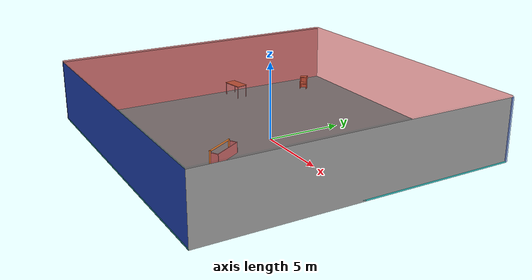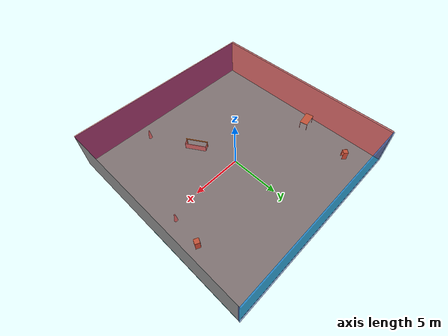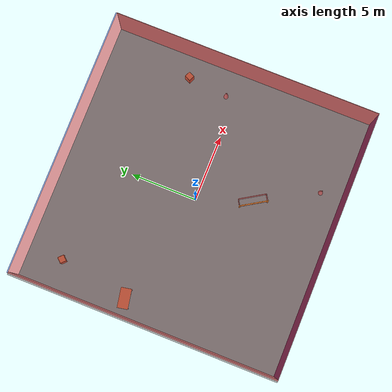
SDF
<sdf version="1.4">
 <world name="default">
  <physics type="ode">
   <max_step_size>0.001</max_step_size>
   <real_time_factor>1</real_time_factor>
   <real_time_update_rate>1000</real_time_update_rate>
   <gravity>0 0 -9.8</gravity>
  </physics>
  <scene><ambient>0.4 0.4 0.4 1</ambient><background>0.7 0.7 0.7 1</background><shadows>1</shadows></scene>
  <model name="Surrounding">
   <static>1</static>
   <link name="Ceiling">
    <collision name="Ceiling_Collision"><geometry><box><size>20 20 0.1</size></box></geometry></collision>
    <visual name="Ceiling_Visual">
     <geometry><box><size>20 20 0.1</size></box></geometry>
     <material>
      <script><uri>file://media/materials/scripts/gazebo.material</uri><name>Gazebo/RedTransparent</name></script>
     </material>
    </visual>
    <pose>0 0 4.05 0 0 0</pose>
   </link>
   <link name="Wall_South">
    <collision name="Wall_South_Collision">
     <geometry><box><size>20 0 4</size></box></geometry>
     <pose>0 0 2 0 -0 0</pose>
    </collision>
    <visual name="Wall_South_Visual">
     <pose>0 0 2 0 -0 0</pose>
     <geometry><box><size>20 0 4</size></box></geometry>
     <material>
      <script><uri>file://media/materials/scripts/gazebo.material</uri><name>Gazebo/BlueLaser</name></script>
     </material>
    </visual>
    <velocity_decay><linear>0</linear><angular>0</angular></velocity_decay>
    <pose>0 -10 0 0 -0 0</pose>
   </link>
   <link name="Wall_East">
    <collision name="Wall_21_Collision">
     <geometry><box><size>20 0 4</size></box></geometry>
     <pose>0 0 2 0 -0 0</pose>
    </collision>
    <visual name="Wall_21_Visual">
     <pose>0 0 2 0 -0 0</pose>
     <geometry><box><size>20 0 4</size></box></geometry>
     <material>
      <script><uri>file://media/materials/scripts/gazebo.material</uri><name>Gazebo/Grey</name></script>
     </material>
    </visual>
    <velocity_decay><linear>0</linear><angular>0</angular></velocity_decay>
    <pose>10 0 0 0 -0 1.5708</pose>
   </link>
   <link name="Wall_North">
    <collision name="Wall_22_Collision">
     <geometry><box><size>20 0.2 4</size></box></geometry>
     <pose>0 0 2 0 -0 0</pose>
    </collision>
    <visual name="Wall_22_Visual">
     <pose>0 0 2 0 -0 0</pose>
     <geometry><box><size>20 0.2 4</size></box></geometry>
     <material>
      <script><uri>file://media/materials/scripts/gazebo.material</uri><name>Gazebo/BlueTransparent</name></script>
     </material>
    </visual>
    <velocity_decay><linear>0</linear><angular>0</angular></velocity_decay>
    <pose>0 10 0 0 -0 0</pose>
   </link>
   <link name="Wall_West">
    <collision name="Wall_23_Collision">
     <geometry><box><size>20 0.2 4</size></box></geometry>
     <pose>0 0 2 0 -0 0</pose>
    </collision>
    <visual name="Wall_23_Visual">
     <pose>0 0 2 0 -0 0</pose>
     <geometry><box><size>20 0.2 4</size></box></geometry>
     <material>
      <script><uri>file://media/materials/scripts/gazebo.material</uri><name>Gazebo/JointAnchor</name></script>
     </material>
    </visual>
    <velocity_decay><linear>0</linear><angular>0</angular></velocity_decay>
    <pose>-10 0 0 0 0 -1.5708</pose>
   </link>
   <link name="Ground_link">
    <collision name="collision">
     <pose>0 0 .05 0 -0 0</pose>
     <geometry><box><size>20 20 0.1</size></box></geometry>
    </collision>
    <visual name="visual">
     <pose>0 0 .05 0 -0 0</pose>
     <geometry><box><size>20 20 0.1</size></box></geometry>
     <material>
      <script><uri>file://media/materials/scripts/gazebo.material</uri><name>Gazebo/Turquoise</name></script>
     </material>
    </visual>
   </link>
   <static>1</static>
  </model>
  <spherical_coordinates>
   <surface_model>EARTH_WGS84</surface_model>
   <latitude_deg>0</latitude_deg>
   <longitude_deg>0</longitude_deg>
   <elevation>0</elevation>
   <heading_deg>0</heading_deg>
  </spherical_coordinates>
  <light name="lightball_0" type="diffuse">
   <diffuse>0.8 0.8 0.8 1</diffuse>
   <specular>0.2 0.2 0.2 1</specular>
   <attenuation>
    <range>100</range>
    <constant>0.7</constant>
    <linear>0.01</linear>
    <quadratic>0.001</quadratic>
   </attenuation>
   <direction>-0.5 0.1 -0.9</direction>
   <pose>4.66239265629 -9.98334417498 0.635004096887 0 0 0</pose>
  </light>
  <light name="lightball_1" type="diffuse">
   <diffuse>0.8 0.8 0.8 1</diffuse>
   <specular>0.2 0.2 0.2 1</specular>
   <attenuation>
    <range>100</range>
    <constant>0.7</constant>
    <linear>0.01</linear>
    <quadratic>0.001</quadratic>
   </attenuation>
   <direction>-0.5 0.1 -0.9</direction>
   <pose>-4.04976878541 -3.09374478103 0.657216965992 0 0 0</pose>
  </light>
  <light name="lightball_2" type="diffuse">
   <diffuse>0.8 0.8 0.8 1</diffuse>
   <specular>0.2 0.2 0.2 1</specular>
   <attenuation>
    <range>100</range>
    <constant>0.7</constant>
    <linear>0.01</linear>
    <quadratic>0.001</quadratic>
   </attenuation>
   <direction>-0.5 0.1 -0.9</direction>
   <pose>2.95732837138 9.71915876501 0.948834510118 0 0 0</pose>
  </light>
  <light name="lightball_3" type="diffuse">
   <diffuse>0.8 0.8 0.8 1</diffuse>
   <specular>0.2 0.2 0.2 1</specular>
   <attenuation>
    <range>100</range>
    <constant>0.7</constant>
    <linear>0.01</linear>
    <quadratic>0.001</quadratic>
   </attenuation>
   <direction>-0.5 0.1 -0.9</direction>
   <pose>1.56471977517 -4.18106235982 1.10201361879 0 0 0</pose>
  </light>
  <light name="lightball_4" type="diffuse">
   <diffuse>0.8 0.8 0.8 1</diffuse>
   <specular>0.2 0.2 0.2 1</specular>
   <attenuation>
    <range>100</range>
    <constant>0.7</constant>
    <linear>0.01</linear>
    <quadratic>0.001</quadratic>
   </attenuation>
   <direction>-0.5 0.1 -0.9</direction>
   <pose>-8.22725529029 -2.97030831555 0.733469570033 0 0 0</pose>
  </light>
  <light name="lightball_5" type="diffuse">
   <diffuse>0.8 0.8 0.8 1</diffuse>
   <specular>0.2 0.2 0.2 1</specular>
   <attenuation>
    <range>100</range>
    <constant>0.7</constant>
    <linear>0.01</linear>
    <quadratic>0.001</quadratic>
   </attenuation>
   <direction>-0.5 0.1 -0.9</direction>
   <pose>-1.79246945149 -1.15304437386 3.11569544359 0 0 0</pose>
  </light>
  <include><uri>model://table</uri><pose>-8.65324264332 2.07644467243 0 0 0 0.181743205013</pose></include>
  <include><uri>model://cabinet</uri><pose>-7.70753363031 7.34643100877 0 0 0 2.38115611354</pose></include>
  <include>
   <uri>model://robocup_3Dsim_goal</uri>
   <pose>1.22045624319 -4.11792903637 0 0 0 0.553359669759</pose>
  </include>
  <include>
   <uri>model://construction_cone</uri>
   <pose>3.85887918996 -8.41541342698 0 0 0 1.49547001991</pose>
  </include>
  <include>
   <uri>model://construction_cone</uri>
   <pose>8.05967680997 0.731405471907 0 0 0 2.78324067182</pose>
  </include>
  <include><uri>model://cabinet</uri><pose>8.31592918848 3.75673759811 0 0 0 2.71137891832</pose></include>
 </world>
</sdf>

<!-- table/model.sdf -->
<sdf version="1.5">
  <model name="table">
    <static>true</static>
    <link name="link">
      <collision name="surface">
        <pose>0 0 1.0 0 0 0</pose>
        <geometry>
          <box>
            <size>1.5 0.8 0.03</size>
          </box>
        </geometry>
        <surface>
          <friction>
            <ode>
              <mu>0.6</mu>
              <mu2>0.6</mu2>
            </ode>
          </friction>
        </surface>
      </collision>
      <visual name="visual1">
        <pose>0 0 1.0 0 0 0</pose>
        <geometry>
          <box>
            <size>1.5 0.8 0.03</size>
          </box>
        </geometry>
        <material>
          <script>
            <uri>model://media/materials/scripts/gazebo.material</uri>
            <name>Gazebo/Wood</name>
          </script>
        </material>
      </visual>
      <collision name="front_left_leg">
        <pose>0.68 0.38 0.5 0 0 0</pose>
        <geometry>
          <cylinder>
            <radius>0.02</radius>
            <length>1.0</length>
          </cylinder>
        </geometry>
      </collision>
      <visual name="front_left_leg">
        <pose>0.68 0.38 0.5 0 0 0</pose>
        <geometry>
          <cylinder>
            <radius>0.02</radius>
            <length>1.0</length>
          </cylinder>
        </geometry>
        <material>
          <script>
            <uri>model://media/materials/scripts/gazebo.material</uri>
            <name>Gazebo/Grey</name>
          </script>
        </material>
      </visual>
      <collision name="front_right_leg">
        <pose>0.68 -0.38 0.5 0 0 0</pose>
        <geometry>
          <cylinder>
            <radius>0.02</radius>
            <length>1.0</length>
          </cylinder>
        </geometry>
      </collision>
      <visual name="front_right_leg">
        <pose>0.68 -0.38 0.5 0 0 0</pose>
        <geometry>
          <cylinder>
            <radius>0.02</radius>
            <length>1.0</length>
          </cylinder>
        </geometry>
        <material>
          <script>
            <uri>model://media/materials/scripts/gazebo.material</uri>
            <name>Gazebo/Grey</name>
          </script>
        </material>
      </visual>
      <collision name="back_right_leg">
        <pose>-0.68 -0.38 0.5 0 0 0</pose>
        <geometry>
          <cylinder>
            <radius>0.02</radius>
            <length>1.0</length>
          </cylinder>
        </geometry>
      </collision>
      <visual name="back_right_leg">
        <pose>-0.68 -0.38 0.5 0 0 0</pose>
        <geometry>
          <cylinder>
            <radius>0.02</radius>
            <length>1.0</length>
          </cylinder>
        </geometry>
        <material>
          <script>
            <uri>model://media/materials/scripts/gazebo.material</uri>
            <name>Gazebo/Grey</name>
          </script>
        </material>
      </visual>
      <collision name="back_left_leg">
        <pose>-0.68 0.38 0.5 0 0 0</pose>
        <geometry>
          <cylinder>
            <radius>0.02</radius>
            <length>1.0</length>
          </cylinder>
        </geometry>
      </collision>
      <visual name="back_left_leg">
        <pose>-0.68 0.38 0.5 0 0 0</pose>
        <geometry>
          <cylinder>
            <radius>0.02</radius>
            <length>1.0</length>
          </cylinder>
        </geometry>
        <material>
          <script>
            <uri>model://media/materials/scripts/gazebo.material</uri>
            <name>Gazebo/Grey</name>
          </script>
        </material>
      </visual>
    </link>
  </model>
</sdf>

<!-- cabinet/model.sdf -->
<sdf version="1.5">
  <model name="cabinet">
    <static>true</static>
    <link name="cabinet_bottom_plate">
      <inertial>
        <pose>0 0 -1 0 0 0</pose>
        <inertia>
          <ixx>2.050000</ixx>
          <ixy>0</ixy>
          <ixz>0</ixz>
          <iyy>2.050000</iyy>
          <iyz>0</iyz>
          <izz>2.050000</izz>
        </inertia>
        <mass>25.000000</mass>
      </inertial>
      <collision name="cabinet_bottom_plate_geom">
        <pose>0 0 0.010000 0 0 0</pose>
        <geometry>
          <box>
            <size>0.450000 0.450000 0.020000</size>
          </box>
        </geometry>
      </collision>
      <visual name="cabinet_bottom_plate_geom_visual">
        <pose>0 0 0.010000 0 0 0</pose>
        <geometry>
          <box>
            <size>0.450000 0.450000 0.020000</size>
          </box>
        </geometry>
        <material>
          <script>
            <uri>model://media/materials/scripts/gazebo.material</uri>
            <name>Gazebo/Wood</name>
          </script>
        </material>
      </visual>
      <collision name="cabinet_bottom_plate_geom_cabinet_back_plate">
        <pose>0.235000 0 0.510000 0 0 0</pose>
        <geometry>
          <box>
            <size>0.020000 0.450000 1.020000</size>
          </box>
        </geometry>
      </collision>
      <visual name="cabinet_bottom_plate_geom_cabinet_back_plate_visual">
        <pose>0.235000 0 0.510000 0 0 0</pose>
        <geometry>
          <box>
            <size>0.020000 0.450000 1.020000</size>
          </box>
        </geometry>
        <material>
          <script>
            <uri>model://media/materials/scripts/gazebo.material</uri>
            <name>Gazebo/Wood</name>
          </script>
        </material>
      </visual>
      <collision name="cabinet_bottom_plate_geom_cabinet_left_plate">
        <pose>0 0.235000 0.510000 0 0 0</pose>
        <geometry>
          <box>
            <size>0.450000 0.020000 1.020000</size>
          </box>
        </geometry>
      </collision>
      <visual name="cabinet_bottom_plate_geom_cabinet_left_plate_visual">
        <pose>0 0.235000 0.510000 0 0 0</pose>
        <geometry>
          <box>
            <size>0.450000 0.020000 1.020000</size>
          </box>
        </geometry>
        <material>
          <script>
            <uri>model://media/materials/scripts/gazebo.material</uri>
            <name>Gazebo/Wood</name>
          </script>
        </material>
      </visual>
      <collision name="cabinet_bottom_plate_geom_cabinet_middle_plate">
        <pose>0 0 0.510000 0 0 0</pose>
        <geometry>
          <box>
            <size>0.450000 0.450000 0.020000</size>
          </box>
        </geometry>
      </collision>
      <visual name="cabinet_bottom_plate_geom_cabinet_middle_plate_visual">
        <pose>0 0 0.510000 0 0 0</pose>
        <geometry>
          <box>
            <size>0.450000 0.450000 0.020000</size>
          </box>
        </geometry>
        <material>
          <script>
            <uri>model://media/materials/scripts/gazebo.material</uri>
            <name>Gazebo/Wood</name>
          </script>
        </material>
      </visual>
      <collision name="cabinet_bottom_plate_geom_cabinet_right_plate">
        <pose>0 -0.235000 0.510000 0 0 0</pose>
        <geometry>
          <box>
            <size>0.450000 0.020000 1.020000</size>
          </box>
        </geometry>
      </collision>
      <visual name="cabinet_bottom_plate_geom_cabinet_right_plate_visual">
        <pose>0 -0.235000 0.510000 0 0 0</pose>
        <geometry>
          <box>
            <size>0.450000 0.020000 1.020000</size>
          </box>
        </geometry>
        <material>
          <script>
            <uri>model://media/materials/scripts/gazebo.material</uri>
            <name>Gazebo/Wood</name>
          </script>
        </material>
      </visual>
      <collision name="cabinet_bottom_plate_geom_cabinet_top_plate">
        <pose>0 0 1.010000 0 0 0</pose>
        <geometry>
          <box>
            <size>0.450000 0.450000 0.020000</size>
          </box>
        </geometry>
      </collision>
      <visual name="cabinet_bottom_plate_geom_cabinet_top_plate_visual">
        <pose>0 0 1.010000 0 0 0</pose>
        <geometry>
          <box>
            <size>0.450000 0.450000 0.020000</size>
          </box>
        </geometry>
        <material>
          <script>
            <uri>model://media/materials/scripts/gazebo.material</uri>
            <name>Gazebo/Wood</name>
          </script>
        </material>
      </visual>
    </link>
  </model>
</sdf>

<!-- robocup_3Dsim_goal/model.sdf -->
<sdf version="1.5">
  <model name="robocup_3d_goal">
    <static>true</static>
    <link name="left_post">
      <pose>0 1.05 0.45 0 0 0</pose>
      <collision name="collision">
        <geometry>
          <cylinder>
            <radius>0.05</radius>
            <length>0.9</length>
          </cylinder>
        </geometry>
      </collision>
      <visual name="visual">
        <geometry>
          <cylinder>
            <radius>0.05</radius>
            <length>0.9</length>
          </cylinder>
        </geometry>
        <material>
          <script>
            <uri>file://media/materials/scripts/gazebo.material</uri>
            <name>Gazebo/ZincYellow</name>
          </script>
        </material>
      </visual>
    </link>
    <link name="left_support_horiz_lower">
      <pose>0.30 1.05 0.01 0 0 0</pose>
      <collision name="collision">
        <geometry>
          <box>
            <size>0.50 0.02 0.02</size>
          </box>
        </geometry>
      </collision>
      <visual name="visual">
        <geometry>
          <box>
            <size>0.50 0.02 0.02</size>
          </box>
        </geometry>
        <material>
          <script>
            <uri>file://media/materials/scripts/gazebo.material</uri>
            <name>Gazebo/White</name>
          </script>
        </material>
      </visual>
    </link>
    <link name="left_support_horiz_upper">
      <pose>0.30 1.05 0.79 0 0 0</pose>
      <collision name="collision">
        <geometry>
          <box>
            <size>0.50 0.02 0.02</size>
          </box>
        </geometry>
      </collision>
      <visual name="visual">
        <geometry>
          <box>
            <size>0.50 0.02 0.02</size>
          </box>
        </geometry>
        <material>
          <script>
            <uri>file://media/materials/scripts/gazebo.material</uri>
            <name>Gazebo/White</name>
          </script>
        </material>
      </visual>
    </link>
    <link name="left_support_vertical">
      <pose>0.56 1.05 0.4 0 1.5708 0</pose>
      <collision name="collision">
        <geometry>
          <box>
            <size>0.80 0.02 0.02</size>
          </box>
        </geometry>
      </collision>
      <visual name="visual">
        <geometry>
          <box>
            <size>0.80 0.02 0.02</size>
          </box>
        </geometry>
        <material>
          <script>
            <uri>file://media/materials/scripts/gazebo.material</uri>
            <name>Gazebo/White</name>
          </script>
        </material>
      </visual>
    </link>
    <link name="right_support_horiz_lower">
      <pose>0.30 -1.05 0.01 0 0 0</pose>
      <collision name="collision">
        <geometry>
          <box>
            <size>0.50 0.02 0.02</size>
          </box>
        </geometry>
      </collision>
      <visual name="visual">
        <geometry>
          <box>
            <size>0.50 0.02 0.02</size>
          </box>
        </geometry>
        <material>
          <script>
            <uri>file://media/materials/scripts/gazebo.material</uri>
            <name>Gazebo/White</name>
          </script>
        </material>
      </visual>
    </link>
    <link name="right_support_horiz_upper">
      <pose>0.30 -1.05 0.79 0 0 0</pose>
      <collision name="collision">
        <geometry>
          <box>
            <size>0.50 0.02 0.02</size>
          </box>
        </geometry>
      </collision>
      <visual name="visual">
        <geometry>
          <box>
            <size>0.50 0.02 0.02</size>
          </box>
        </geometry>
        <material>
          <script>
            <uri>file://media/materials/scripts/gazebo.material</uri>
            <name>Gazebo/White</name>
          </script>
        </material>
      </visual>
    </link>
    <link name="right_support_vertical">
      <pose>0.56 -1.05 0.4 0 1.5708 0</pose>
      <collision name="collision">
        <geometry>
          <box>
            <size>0.80 0.02 0.02</size>
          </box>
        </geometry>
      </collision>
      <visual name="visual">
        <geometry>
          <box>
            <size>0.80 0.02 0.02</size>
          </box>
        </geometry>
        <material>
          <script>
            <uri>file://media/materials/scripts/gazebo.material</uri>
            <name>Gazebo/White</name>
          </script>
        </material>
      </visual>
    </link>
    <link name="center_support_horiz_lower">
      <pose>0.56 0 0.01 0 1.5708 0</pose>
      <collision name="collision">
        <geometry>
          <box>
            <size>0.02 2.08 0.02</size>
          </box>
        </geometry>
      </collision>
      <visual name="visual">
        <geometry>
          <box>
            <size>0.02 2.08 0.02</size>
          </box>
        </geometry>
        <material>
          <script>
            <uri>file://media/materials/scripts/gazebo.material</uri>
            <name>Gazebo/White</name>
          </script>
        </material>
      </visual>
    </link>
    <link name="center_support_horiz_upper">
      <pose>0.56 0 0.79 0 1.5708 0</pose>
      <collision name="collision">
        <geometry>
          <box>
            <size>0.02 2.08 0.02</size>
          </box>
        </geometry>
      </collision>
      <visual name="visual">
        <geometry>
          <box>
            <size>0.02 2.08 0.02</size>
          </box>
        </geometry>
        <material>
          <script>
            <uri>file://media/materials/scripts/gazebo.material</uri>
            <name>Gazebo/White</name>
          </script>
        </material>
      </visual>
    </link>
    <link name="right_post">
      <pose>0 -1.05 0.45 0 0 0</pose>
      <collision name="collision">
        <geometry>
          <cylinder>
            <radius>0.05</radius>
            <length>0.9</length>
          </cylinder>
        </geometry>
      </collision>
      <visual name="visual">
        <geometry>
          <cylinder>
            <radius>0.05</radius>
            <length>0.9</length>
          </cylinder>
        </geometry>
        <material>
          <script>
            <uri>file://media/materials/scripts/gazebo.material</uri>
            <name>Gazebo/ZincYellow</name>
          </script>
        </material>
      </visual>
    </link>
    <link name="crossbar">
      <pose>0 0 0.85 1.57 1.57 0</pose>
      <collision name="collision">
        <geometry>
          <cylinder>
            <radius>0.05</radius>
            <length>2.0</length>
          </cylinder>
        </geometry>
      </collision>
      <visual name="visual">
        <geometry>
          <cylinder>
            <radius>0.05</radius>
            <length>2.0</length>
          </cylinder>
        </geometry>
        <material>
          <script>
            <uri>file://media/materials/scripts/gazebo.material</uri>
            <name>Gazebo/ZincYellow</name>
          </script>
        </material>
      </visual>
    </link>
    <link name="center_net">
      <pose>0.56 0 0.40 0 0 0</pose>
      <collision name="collision">
        <geometry>
          <box>
            <size>0.01 2.1 0.80</size>
          </box>
        </geometry>
      </collision>
      <visual name="visual">
        <geometry>
          <box>
            <size>0.01 2.1 0.80</size>
          </box>
        </geometry>
        <material>
          <script>
            <uri>model://../model_source/models/robocup09_spl_field/materials/scripts/</uri>
            <uri>model://../model_source/models/robocup09_spl_field/materials/textures/</uri>
            <name>RoboCup/Net</name>
          </script>
        </material>
      </visual>
    </link>
    <link name="left_net">
      <pose>0.30 1.05 0.40 0 0 0</pose>
      <collision name="collision">
        <geometry>
          <box>
            <size>0.50 0.01 0.76</size>
          </box>
        </geometry>
      </collision>
      <visual name="visual">
        <geometry>
          <box>
            <size>0.50 0.01 0.76</size>
          </box>
        </geometry>
        <material>
          <script>
            <uri>model://../model_source/models/robocup09_spl_field/materials/scripts/</uri>
            <uri>model://../model_source/models/robocup09_spl_field/materials/textures/</uri>
            <name>RoboCup/Net</name>
          </script>
        </material>
      </visual>
    </link>
    <link name="right_net">
      <pose>0.30 -1.05 0.40 0 0 0</pose>
      <collision name="collision">
        <geometry>
          <box>
            <size>0.50 0.01 0.76</size>
          </box>
        </geometry>
      </collision>
      <visual name="visual">
        <geometry>
          <box>
            <size>0.50 0.01 0.76</size>
          </box>
        </geometry>
        <material>
          <script>
            <uri>model://../model_source/models/robocup09_spl_field/materials/scripts/</uri>
            <uri>model://../model_source/models/robocup09_spl_field/materials/textures/</uri>
            <name>RoboCup/Net</name>
          </script>
        </material>
      </visual>
    </link>
  </model>
</sdf>

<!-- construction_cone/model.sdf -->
<sdf version="1.5">
  <model name="Construction Cone">
    <link name="link">
      <collision name="collision">
        <geometry>
          <mesh>
            <scale>10 10 10</scale>
            <uri>file://isr-testbed/construction_cone/meshes/construction_cone.dae</uri>
          </mesh>
        </geometry>
      </collision>
      <visual name="visual">
        <geometry>
          <mesh>
            <scale>10 10 10</scale>
            <uri>file://isr-testbed/construction_cone/meshes/construction_cone.dae</uri>
          </mesh>
        </geometry>
      </visual>
    </link>
  </model>
</sdf>
